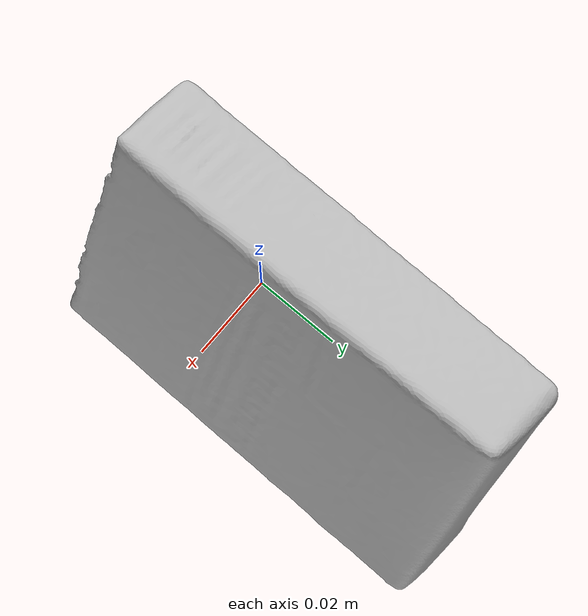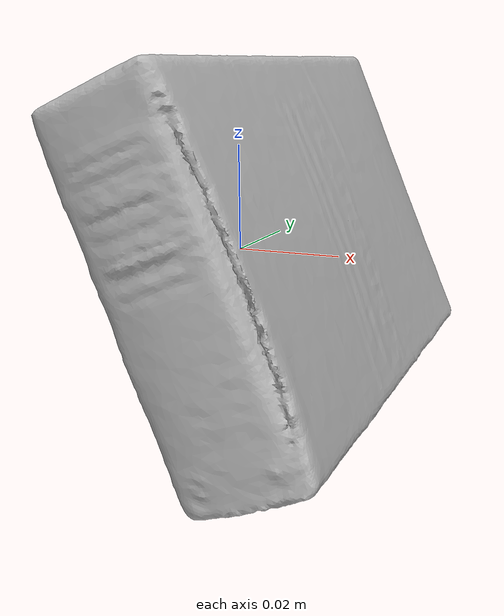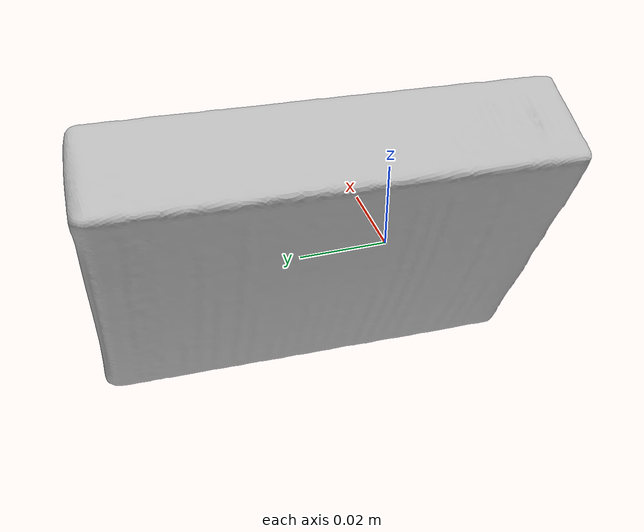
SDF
<?xml version='1.0'?>
<sdf version="1.4">
  <model name="PatchesSensitive">
    <static>false</static>
    <link name="link">
      <inertial>
        <pose>0.005004161172250858 0.014653949729231914 2.9687988367112555e-05 -1.5850189823122345 0.37790905771845845 3.1257844341820613</pose>
        <mass>0.018923790651802212</mass>
        <inertia>
          <ixx>2.3836649979028696e-05</ixx>
          <ixy>1.4771695564700894e-21</ixy>
          <ixz>2.4919785504961942e-21</ixz>
          <iyy>1.7229649327079285e-05</iyy>
          <iyz>5.55796016841107e-21</iyz>
          <izz>8.75349893697357e-06</izz>
        </inertia>
      </inertial>
      <collision name="collision">
        <geometry>
          <mesh>
            <!-- Use a downsampled mesh for collisions -->
            <uri>model:///PatchesSensitive/PatchesSensitive_250_collision.obj</uri>
	        </mesh>
        </geometry>
        <surface>
      </surface>
      </collision>
      <visual name="visual">
        <geometry>
          <mesh>
            <uri>model:///PatchesSensitive/PatchesSensitive_25k_tex.obj</uri>
	        </mesh>
        </geometry>
        <material>
          <script>
            <uri>model:///PatchesSensitive/PatchesSensitive.material</uri>
            <name>PatchesSensitive</name>
          </script>
        </material>
      </visual>
    </link>
  </model>
</sdf>
